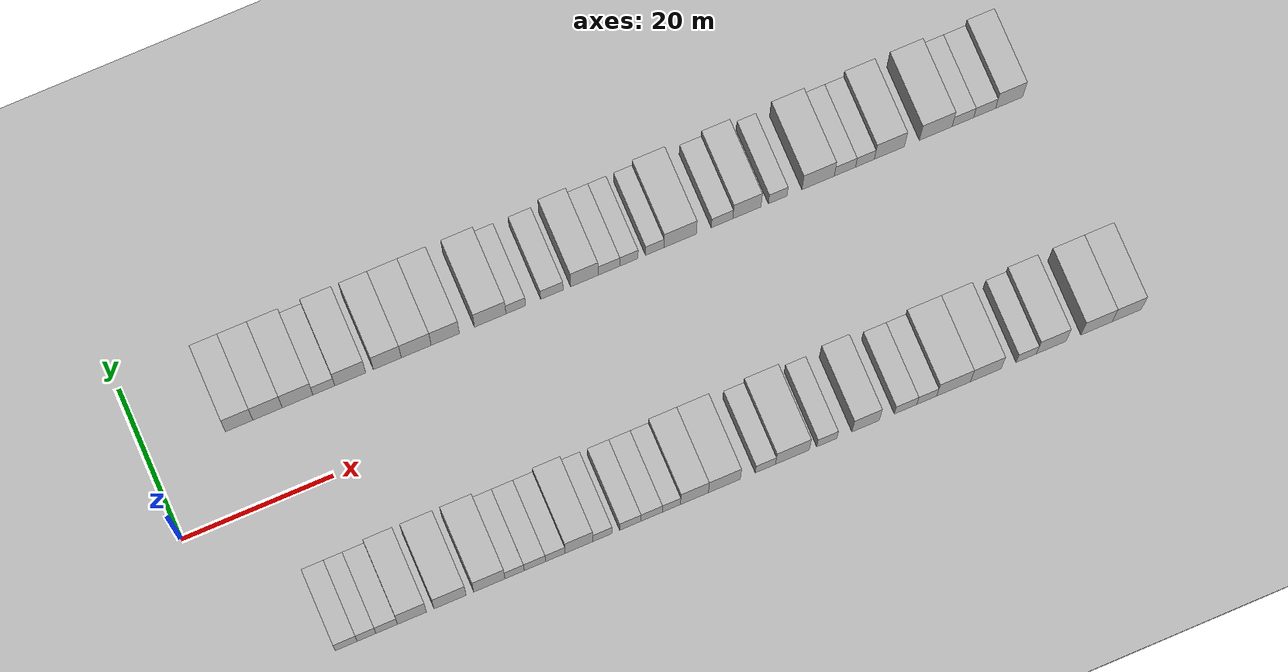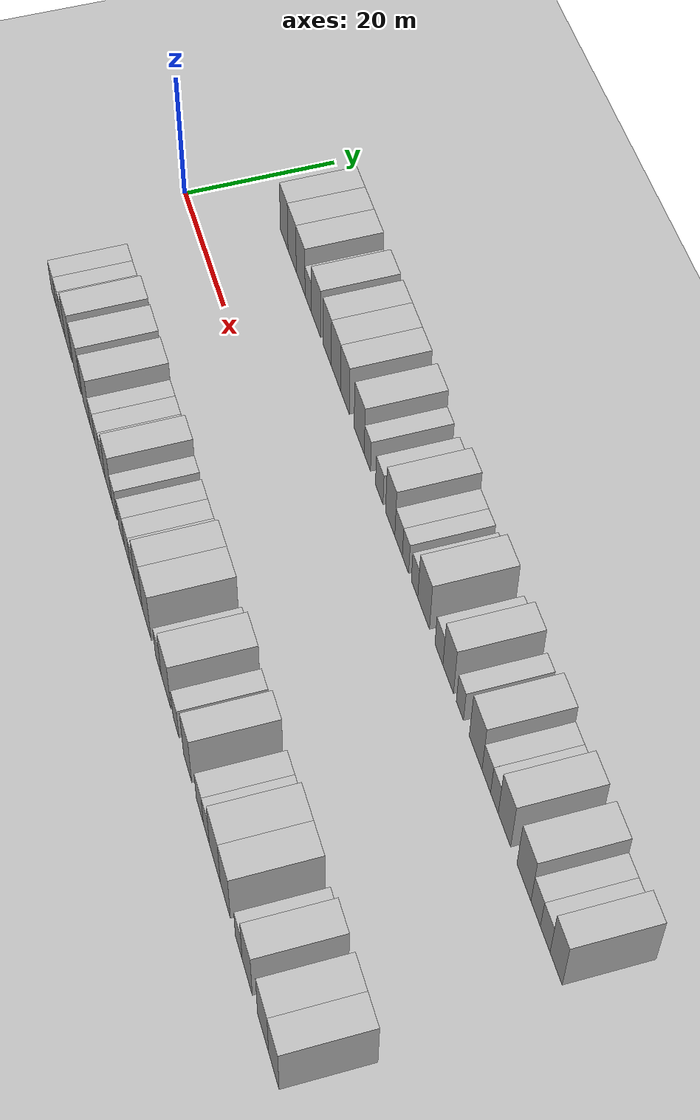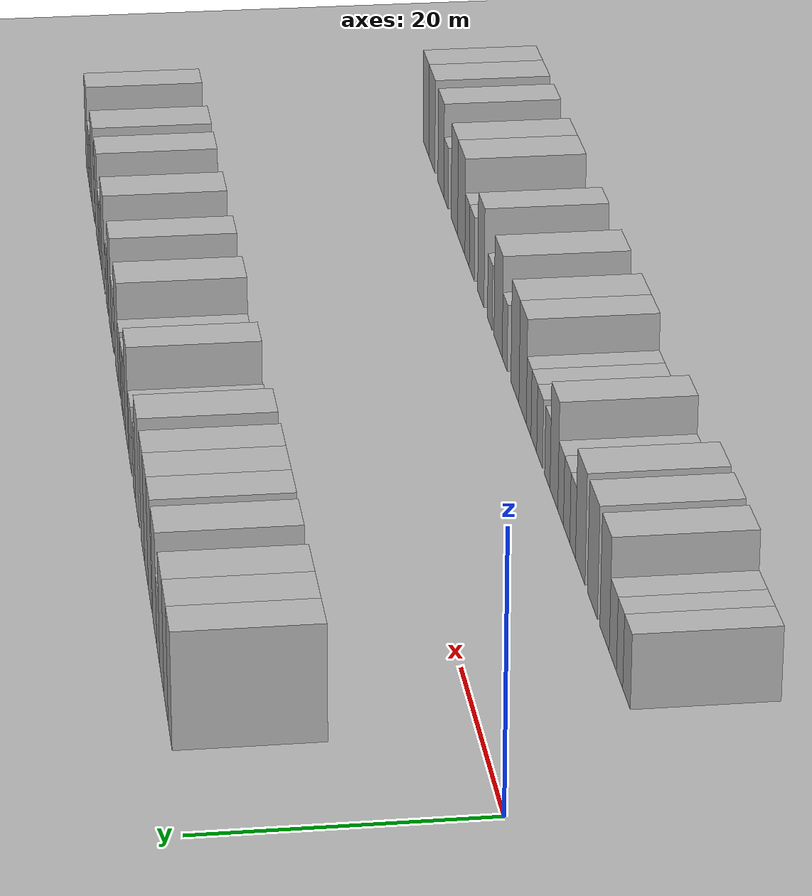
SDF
<sdf version="1.6">
 <world name="default">
  <include><name>ground_plane_1</name><uri>model://HANNAS_ground_plane</uri></include>
  <include>
   <name>ground_plane_2</name>
   <uri>model://HANNAS_ground_plane</uri>
   <pose>100 0 0  0 0 0</pose>
  </include>
  <model name="building_1">
   <static>1</static>
   <pose>11.8060 15.0000 0 0.000000 0.000000 1.570796</pose>
   <link name="link">
    <pose>0 0 4.50 0 0 0</pose>
    <collision name="collision"><geometry><box><size>10.0000 3.6119 9.0000</size></box></geometry></collision>
    <visual name="visual">
     <cast_shadows>0</cast_shadows>
     <geometry><box><size>10.0000 3.6119 9.0000</size></box></geometry>
     <material>
      <script>
       <uri>model://HANNAS_wall/materials/scripts</uri>
       <uri>model://HANNAS_wall/materials/textures</uri>
       <name>vrc/HANNAS_wall</name>
      </script>
     </material>
    </visual>
   </link>
  </model>
  <model name="building_2">
   <static>1</static>
   <pose>15.5486 15.0000 0 0.000000 0.000000 1.570796</pose>
   <link name="link">
    <pose>0 0 4.50 0 0 0</pose>
    <collision name="collision"><geometry><box><size>10.0000 3.8733 9.0000</size></box></geometry></collision>
    <visual name="visual">
     <cast_shadows>0</cast_shadows>
     <geometry><box><size>10.0000 3.8733 9.0000</size></box></geometry>
     <material>
      <script>
       <uri>model://HANNAS_wall/materials/scripts</uri>
       <uri>model://HANNAS_wall/materials/textures</uri>
       <name>vrc/HANNAS_wall</name>
      </script>
     </material>
    </visual>
   </link>
  </model>
  <model name="building_3">
   <static>1</static>
   <pose>19.5123 15.0000 0 0.000000 0.000000 1.570796</pose>
   <link name="link">
    <pose>0 0 4.50 0 0 0</pose>
    <collision name="collision"><geometry><box><size>10.0000 4.0541 9.0000</size></box></geometry></collision>
    <visual name="visual">
     <cast_shadows>0</cast_shadows>
     <geometry><box><size>10.0000 4.0541 9.0000</size></box></geometry>
     <material>
      <script>
       <uri>model://HANNAS_wall/materials/scripts</uri>
       <uri>model://HANNAS_wall/materials/textures</uri>
       <name>vrc/HANNAS_wall</name>
      </script>
     </material>
    </visual>
   </link>
  </model>
  <model name="building_4">
   <static>1</static>
   <pose>22.9831 15.0000 0 0.000000 0.000000 1.570796</pose>
   <link name="link">
    <pose>0 0 3.00 0 0 0</pose>
    <collision name="collision"><geometry><box><size>10.0000 2.8875 6.0000</size></box></geometry></collision>
    <visual name="visual">
     <cast_shadows>0</cast_shadows>
     <geometry><box><size>10.0000 2.8875 6.0000</size></box></geometry>
     <material>
      <script>
       <uri>model://HANNAS_wall/materials/scripts</uri>
       <uri>model://HANNAS_wall/materials/textures</uri>
       <name>vrc/HANNAS_wall</name>
      </script>
     </material>
    </visual>
   </link>
  </model>
  <model name="building_5">
   <static>1</static>
   <pose>26.4760 15.0000 0 0.000000 0.000000 1.570796</pose>
   <link name="link">
    <pose>0 0 4.50 0 0 0</pose>
    <collision name="collision"><geometry><box><size>10.0000 4.0983 9.0000</size></box></geometry></collision>
    <visual name="visual">
     <cast_shadows>0</cast_shadows>
     <geometry><box><size>10.0000 4.0983 9.0000</size></box></geometry>
     <material>
      <script>
       <uri>model://HANNAS_wall/materials/scripts</uri>
       <uri>model://HANNAS_wall/materials/textures</uri>
       <name>vrc/HANNAS_wall</name>
      </script>
     </material>
    </visual>
   </link>
  </model>
  <model name="building_6">
   <static>1</static>
   <pose>31.3769 15.0000 0 0.000000 0.000000 1.570796</pose>
   <link name="link">
    <pose>0 0 4.50 0 0 0</pose>
    <collision name="collision"><geometry><box><size>10.0000 3.7035 9.0000</size></box></geometry></collision>
    <visual name="visual">
     <cast_shadows>0</cast_shadows>
     <geometry><box><size>10.0000 3.7035 9.0000</size></box></geometry>
     <material>
      <script>
       <uri>model://HANNAS_wall/materials/scripts</uri>
       <uri>model://HANNAS_wall/materials/textures</uri>
       <name>vrc/HANNAS_wall</name>
      </script>
     </material>
    </visual>
   </link>
  </model>
  <model name="building_7">
   <static>1</static>
   <pose>35.2094 15.0000 0 0.000000 0.000000 1.570796</pose>
   <link name="link">
    <pose>0 0 4.50 0 0 0</pose>
    <collision name="collision"><geometry><box><size>10.0000 3.9614 9.0000</size></box></geometry></collision>
    <visual name="visual">
     <cast_shadows>0</cast_shadows>
     <geometry><box><size>10.0000 3.9614 9.0000</size></box></geometry>
     <material>
      <script>
       <uri>model://HANNAS_wall/materials/scripts</uri>
       <uri>model://HANNAS_wall/materials/textures</uri>
       <name>vrc/HANNAS_wall</name>
      </script>
     </material>
    </visual>
   </link>
  </model>
  <model name="building_8">
   <static>1</static>
   <pose>39.0596 15.0000 0 0.000000 0.000000 1.570796</pose>
   <link name="link">
    <pose>0 0 4.50 0 0 0</pose>
    <collision name="collision"><geometry><box><size>10.0000 3.7391 9.0000</size></box></geometry></collision>
    <visual name="visual">
     <cast_shadows>0</cast_shadows>
     <geometry><box><size>10.0000 3.7391 9.0000</size></box></geometry>
     <material>
      <script>
       <uri>model://HANNAS_wall/materials/scripts</uri>
       <uri>model://HANNAS_wall/materials/textures</uri>
       <name>vrc/HANNAS_wall</name>
      </script>
     </material>
    </visual>
   </link>
  </model>
  <model name="building_9">
   <static>1</static>
   <pose>45.0208 15.0000 0 0.000000 0.000000 1.570796</pose>
   <link name="link">
    <pose>0 0 4.50 0 0 0</pose>
    <collision name="collision"><geometry><box><size>10.0000 4.1831 9.0000</size></box></geometry></collision>
    <visual name="visual">
     <cast_shadows>0</cast_shadows>
     <geometry><box><size>10.0000 4.1831 9.0000</size></box></geometry>
     <material>
      <script>
       <uri>model://HANNAS_wall/materials/scripts</uri>
       <uri>model://HANNAS_wall/materials/textures</uri>
       <name>vrc/HANNAS_wall</name>
      </script>
     </material>
    </visual>
   </link>
  </model>
  <model name="building_10">
   <static>1</static>
   <pose>48.4158 15.0000 0 0.000000 0.000000 1.570796</pose>
   <link name="link">
    <pose>0 0 3.00 0 0 0</pose>
    <collision name="collision"><geometry><box><size>10.0000 2.6068 6.0000</size></box></geometry></collision>
    <visual name="visual">
     <cast_shadows>0</cast_shadows>
     <geometry><box><size>10.0000 2.6068 6.0000</size></box></geometry>
     <material>
      <script>
       <uri>model://HANNAS_wall/materials/scripts</uri>
       <uri>model://HANNAS_wall/materials/textures</uri>
       <name>vrc/HANNAS_wall</name>
      </script>
     </material>
    </visual>
   </link>
  </model>
  <model name="building_11">
   <static>1</static>
   <pose>53.2167 15.0000 0 0.000000 0.000000 1.570796</pose>
   <link name="link">
    <pose>0 0 3.00 0 0 0</pose>
    <collision name="collision"><geometry><box><size>10.0000 2.9951 6.0000</size></box></geometry></collision>
    <visual name="visual">
     <cast_shadows>0</cast_shadows>
     <geometry><box><size>10.0000 2.9951 6.0000</size></box></geometry>
     <material>
      <script>
       <uri>model://HANNAS_wall/materials/scripts</uri>
       <uri>model://HANNAS_wall/materials/textures</uri>
       <name>vrc/HANNAS_wall</name>
      </script>
     </material>
    </visual>
   </link>
  </model>
  <model name="building_12">
   <static>1</static>
   <pose>57.5387 15.0000 0 0.000000 0.000000 1.570796</pose>
   <link name="link">
    <pose>0 0 4.50 0 0 0</pose>
    <collision name="collision"><geometry><box><size>10.0000 3.6490 9.0000</size></box></geometry></collision>
    <visual name="visual">
     <cast_shadows>0</cast_shadows>
     <geometry><box><size>10.0000 3.6490 9.0000</size></box></geometry>
     <material>
      <script>
       <uri>model://HANNAS_wall/materials/scripts</uri>
       <uri>model://HANNAS_wall/materials/textures</uri>
       <name>vrc/HANNAS_wall</name>
      </script>
     </material>
    </visual>
   </link>
  </model>
  <model name="building_13">
   <static>1</static>
   <pose>60.8177 15.0000 0 0.000000 0.000000 1.570796</pose>
   <link name="link">
    <pose>0 0 3.00 0 0 0</pose>
    <collision name="collision"><geometry><box><size>10.0000 2.9090 6.0000</size></box></geometry></collision>
    <visual name="visual">
     <cast_shadows>0</cast_shadows>
     <geometry><box><size>10.0000 2.9090 6.0000</size></box></geometry>
     <material>
      <script>
       <uri>model://HANNAS_wall/materials/scripts</uri>
       <uri>model://HANNAS_wall/materials/textures</uri>
       <name>vrc/HANNAS_wall</name>
      </script>
     </material>
    </visual>
   </link>
  </model>
  <model name="building_14">
   <static>1</static>
   <pose>63.4770 15.0000 0 0.000000 0.000000 1.570796</pose>
   <link name="link">
    <pose>0 0 3.00 0 0 0</pose>
    <collision name="collision"><geometry><box><size>10.0000 2.4096 6.0000</size></box></geometry></collision>
    <visual name="visual">
     <cast_shadows>0</cast_shadows>
     <geometry><box><size>10.0000 2.4096 6.0000</size></box></geometry>
     <material>
      <script>
       <uri>model://HANNAS_wall/materials/scripts</uri>
       <uri>model://HANNAS_wall/materials/textures</uri>
       <name>vrc/HANNAS_wall</name>
      </script>
     </material>
    </visual>
   </link>
  </model>
  <model name="building_15">
   <static>1</static>
   <pose>66.9053 15.0000 0 0.000000 0.000000 1.570796</pose>
   <link name="link">
    <pose>0 0 3.00 0 0 0</pose>
    <collision name="collision"><geometry><box><size>10.0000 2.4470 6.0000</size></box></geometry></collision>
    <visual name="visual">
     <cast_shadows>0</cast_shadows>
     <geometry><box><size>10.0000 2.4470 6.0000</size></box></geometry>
     <material>
      <script>
       <uri>model://HANNAS_wall/materials/scripts</uri>
       <uri>model://HANNAS_wall/materials/textures</uri>
       <name>vrc/HANNAS_wall</name>
      </script>
     </material>
    </visual>
   </link>
  </model>
  <model name="building_16">
   <static>1</static>
   <pose>70.2902 15.0000 0 0.000000 0.000000 1.570796</pose>
   <link name="link">
    <pose>0 0 4.50 0 0 0</pose>
    <collision name="collision"><geometry><box><size>10.0000 4.3228 9.0000</size></box></geometry></collision>
    <visual name="visual">
     <cast_shadows>0</cast_shadows>
     <geometry><box><size>10.0000 4.3228 9.0000</size></box></geometry>
     <material>
      <script>
       <uri>model://HANNAS_wall/materials/scripts</uri>
       <uri>model://HANNAS_wall/materials/textures</uri>
       <name>vrc/HANNAS_wall</name>
      </script>
     </material>
    </visual>
   </link>
  </model>
  <model name="building_17">
   <static>1</static>
   <pose>75.8866 15.0000 0 0.000000 0.000000 1.570796</pose>
   <link name="link">
    <pose>0 0 3.00 0 0 0</pose>
    <collision name="collision"><geometry><box><size>10.0000 2.8701 6.0000</size></box></geometry></collision>
    <visual name="visual">
     <cast_shadows>0</cast_shadows>
     <geometry><box><size>10.0000 2.8701 6.0000</size></box></geometry>
     <material>
      <script>
       <uri>model://HANNAS_wall/materials/scripts</uri>
       <uri>model://HANNAS_wall/materials/textures</uri>
       <name>vrc/HANNAS_wall</name>
      </script>
     </material>
    </visual>
   </link>
  </model>
  <model name="building_18">
   <static>1</static>
   <pose>79.2001 15.0000 0 0.000000 0.000000 1.570796</pose>
   <link name="link">
    <pose>0 0 4.50 0 0 0</pose>
    <collision name="collision"><geometry><box><size>10.0000 3.7569 9.0000</size></box></geometry></collision>
    <visual name="visual">
     <cast_shadows>0</cast_shadows>
     <geometry><box><size>10.0000 3.7569 9.0000</size></box></geometry>
     <material>
      <script>
       <uri>model://HANNAS_wall/materials/scripts</uri>
       <uri>model://HANNAS_wall/materials/textures</uri>
       <name>vrc/HANNAS_wall</name>
      </script>
     </material>
    </visual>
   </link>
  </model>
  <model name="building_19">
   <static>1</static>
   <pose>83.3253 15.0000 0 0.000000 0.000000 1.570796</pose>
   <link name="link">
    <pose>0 0 3.00 0 0 0</pose>
    <collision name="collision"><geometry><box><size>10.0000 2.4935 6.0000</size></box></geometry></collision>
    <visual name="visual">
     <cast_shadows>0</cast_shadows>
     <geometry><box><size>10.0000 2.4935 6.0000</size></box></geometry>
     <material>
      <script>
       <uri>model://HANNAS_wall/materials/scripts</uri>
       <uri>model://HANNAS_wall/materials/textures</uri>
       <name>vrc/HANNAS_wall</name>
      </script>
     </material>
    </visual>
   </link>
  </model>
  <model name="building_20">
   <static>1</static>
   <pose>88.7367 15.0000 0 0.000000 0.000000 1.570796</pose>
   <link name="link">
    <pose>0 0 4.50 0 0 0</pose>
    <collision name="collision"><geometry><box><size>10.0000 4.3294 9.0000</size></box></geometry></collision>
    <visual name="visual">
     <cast_shadows>0</cast_shadows>
     <geometry><box><size>10.0000 4.3294 9.0000</size></box></geometry>
     <material>
      <script>
       <uri>model://HANNAS_wall/materials/scripts</uri>
       <uri>model://HANNAS_wall/materials/textures</uri>
       <name>vrc/HANNAS_wall</name>
      </script>
     </material>
    </visual>
   </link>
  </model>
  <model name="building_21">
   <static>1</static>
   <pose>92.3291 15.0000 0 0.000000 0.000000 1.570796</pose>
   <link name="link">
    <pose>0 0 3.00 0 0 0</pose>
    <collision name="collision"><geometry><box><size>10.0000 2.8554 6.0000</size></box></geometry></collision>
    <visual name="visual">
     <cast_shadows>0</cast_shadows>
     <geometry><box><size>10.0000 2.8554 6.0000</size></box></geometry>
     <material>
      <script>
       <uri>model://HANNAS_wall/materials/scripts</uri>
       <uri>model://HANNAS_wall/materials/textures</uri>
       <name>vrc/HANNAS_wall</name>
      </script>
     </material>
    </visual>
   </link>
  </model>
  <model name="building_22">
   <static>1</static>
   <pose>95.0133 15.0000 0 0.000000 0.000000 1.570796</pose>
   <link name="link">
    <pose>0 0 3.00 0 0 0</pose>
    <collision name="collision"><geometry><box><size>10.0000 2.5129 6.0000</size></box></geometry></collision>
    <visual name="visual">
     <cast_shadows>0</cast_shadows>
     <geometry><box><size>10.0000 2.5129 6.0000</size></box></geometry>
     <material>
      <script>
       <uri>model://HANNAS_wall/materials/scripts</uri>
       <uri>model://HANNAS_wall/materials/textures</uri>
       <name>vrc/HANNAS_wall</name>
      </script>
     </material>
    </visual>
   </link>
  </model>
  <model name="building_23">
   <static>1</static>
   <pose>98.2925 15.0000 0 0.000000 0.000000 1.570796</pose>
   <link name="link">
    <pose>0 0 4.50 0 0 0</pose>
    <collision name="collision"><geometry><box><size>10.0000 4.0456 9.0000</size></box></geometry></collision>
    <visual name="visual">
     <cast_shadows>0</cast_shadows>
     <geometry><box><size>10.0000 4.0456 9.0000</size></box></geometry>
     <material>
      <script>
       <uri>model://HANNAS_wall/materials/scripts</uri>
       <uri>model://HANNAS_wall/materials/textures</uri>
       <name>vrc/HANNAS_wall</name>
      </script>
     </material>
    </visual>
   </link>
  </model>
  <model name="building_24">
   <static>1</static>
   <pose>104.5154 15.0000 0 0.000000 0.000000 1.570796</pose>
   <link name="link">
    <pose>0 0 4.50 0 0 0</pose>
    <collision name="collision"><geometry><box><size>10.0000 4.4003 9.0000</size></box></geometry></collision>
    <visual name="visual">
     <cast_shadows>0</cast_shadows>
     <geometry><box><size>10.0000 4.4003 9.0000</size></box></geometry>
     <material>
      <script>
       <uri>model://HANNAS_wall/materials/scripts</uri>
       <uri>model://HANNAS_wall/materials/textures</uri>
       <name>vrc/HANNAS_wall</name>
      </script>
     </material>
    </visual>
   </link>
  </model>
  <model name="building_25">
   <static>1</static>
   <pose>108.1630 15.0000 0 0.000000 0.000000 1.570796</pose>
   <link name="link">
    <pose>0 0 3.00 0 0 0</pose>
    <collision name="collision"><geometry><box><size>10.0000 2.8949 6.0000</size></box></geometry></collision>
    <visual name="visual">
     <cast_shadows>0</cast_shadows>
     <geometry><box><size>10.0000 2.8949 6.0000</size></box></geometry>
     <material>
      <script>
       <uri>model://HANNAS_wall/materials/scripts</uri>
       <uri>model://HANNAS_wall/materials/textures</uri>
       <name>vrc/HANNAS_wall</name>
      </script>
     </material>
    </visual>
   </link>
  </model>
  <model name="building_26">
   <static>1</static>
   <pose>111.0786 15.0000 0 0.000000 0.000000 1.570796</pose>
   <link name="link">
    <pose>0 0 3.00 0 0 0</pose>
    <collision name="collision"><geometry><box><size>10.0000 2.9363 6.0000</size></box></geometry></collision>
    <visual name="visual">
     <cast_shadows>0</cast_shadows>
     <geometry><box><size>10.0000 2.9363 6.0000</size></box></geometry>
     <material>
      <script>
       <uri>model://HANNAS_wall/materials/scripts</uri>
       <uri>model://HANNAS_wall/materials/textures</uri>
       <name>vrc/HANNAS_wall</name>
      </script>
     </material>
    </visual>
   </link>
  </model>
  <model name="building_27">
   <static>1</static>
   <pose>114.3755 15.0000 0 0.000000 0.000000 1.570796</pose>
   <link name="link">
    <pose>0 0 4.50 0 0 0</pose>
    <collision name="collision"><geometry><box><size>10.0000 3.6575 9.0000</size></box></geometry></collision>
    <visual name="visual">
     <cast_shadows>0</cast_shadows>
     <geometry><box><size>10.0000 3.6575 9.0000</size></box></geometry>
     <material>
      <script>
       <uri>model://HANNAS_wall/materials/scripts</uri>
       <uri>model://HANNAS_wall/materials/textures</uri>
       <name>vrc/HANNAS_wall</name>
      </script>
     </material>
    </visual>
   </link>
  </model>
  <model name="building_54">
   <static>1</static>
   <pose>13.4438 -15.0000 0 0.000000 0.000000 1.570796</pose>
   <link name="link">
    <pose>0 0 3.00 0 0 0</pose>
    <collision name="collision"><geometry><box><size>10.0000 2.8877 6.0000</size></box></geometry></collision>
    <visual name="visual">
     <cast_shadows>0</cast_shadows>
     <geometry><box><size>10.0000 2.8877 6.0000</size></box></geometry>
     <material>
      <script>
       <uri>model://HANNAS_wall/materials/scripts</uri>
       <uri>model://HANNAS_wall/materials/textures</uri>
       <name>vrc/HANNAS_wall</name>
      </script>
     </material>
    </visual>
   </link>
  </model>
  <model name="building_55">
   <static>1</static>
   <pose>16.1163 -15.0000 0 0.000000 0.000000 1.570796</pose>
   <link name="link">
    <pose>0 0 3.00 0 0 0</pose>
    <collision name="collision"><geometry><box><size>10.0000 2.4572 6.0000</size></box></geometry></collision>
    <visual name="visual">
     <cast_shadows>0</cast_shadows>
     <geometry><box><size>10.0000 2.4572 6.0000</size></box></geometry>
     <material>
      <script>
       <uri>model://HANNAS_wall/materials/scripts</uri>
       <uri>model://HANNAS_wall/materials/textures</uri>
       <name>vrc/HANNAS_wall</name>
      </script>
     </material>
    </visual>
   </link>
  </model>
  <model name="building_56">
   <static>1</static>
   <pose>18.7672 -15.0000 0 0.000000 0.000000 1.570796</pose>
   <link name="link">
    <pose>0 0 3.00 0 0 0</pose>
    <collision name="collision"><geometry><box><size>10.0000 2.8445 6.0000</size></box></geometry></collision>
    <visual name="visual">
     <cast_shadows>0</cast_shadows>
     <geometry><box><size>10.0000 2.8445 6.0000</size></box></geometry>
     <material>
      <script>
       <uri>model://HANNAS_wall/materials/scripts</uri>
       <uri>model://HANNAS_wall/materials/textures</uri>
       <name>vrc/HANNAS_wall</name>
      </script>
     </material>
    </visual>
   </link>
  </model>
  <model name="building_57">
   <static>1</static>
   <pose>22.0871 -15.0000 0 0.000000 0.000000 1.570796</pose>
   <link name="link">
    <pose>0 0 4.50 0 0 0</pose>
    <collision name="collision"><geometry><box><size>10.0000 3.7953 9.0000</size></box></geometry></collision>
    <visual name="visual">
     <cast_shadows>0</cast_shadows>
     <geometry><box><size>10.0000 3.7953 9.0000</size></box></geometry>
     <material>
      <script>
       <uri>model://HANNAS_wall/materials/scripts</uri>
       <uri>model://HANNAS_wall/materials/textures</uri>
       <name>vrc/HANNAS_wall</name>
      </script>
     </material>
    </visual>
   </link>
  </model>
  <model name="building_58">
   <static>1</static>
   <pose>27.0920 -15.0000 0 0.000000 0.000000 1.570796</pose>
   <link name="link">
    <pose>0 0 4.50 0 0 0</pose>
    <collision name="collision"><geometry><box><size>10.0000 4.2145 9.0000</size></box></geometry></collision>
    <visual name="visual">
     <cast_shadows>0</cast_shadows>
     <geometry><box><size>10.0000 4.2145 9.0000</size></box></geometry>
     <material>
      <script>
       <uri>model://HANNAS_wall/materials/scripts</uri>
       <uri>model://HANNAS_wall/materials/textures</uri>
       <name>vrc/HANNAS_wall</name>
      </script>
     </material>
    </visual>
   </link>
  </model>
  <model name="building_59">
   <static>1</static>
   <pose>32.2568 -15.0000 0 0.000000 0.000000 1.570796</pose>
   <link name="link">
    <pose>0 0 4.50 0 0 0</pose>
    <collision name="collision"><geometry><box><size>10.0000 4.1152 9.0000</size></box></geometry></collision>
    <visual name="visual">
     <cast_shadows>0</cast_shadows>
     <geometry><box><size>10.0000 4.1152 9.0000</size></box></geometry>
     <material>
      <script>
       <uri>model://HANNAS_wall/materials/scripts</uri>
       <uri>model://HANNAS_wall/materials/textures</uri>
       <name>vrc/HANNAS_wall</name>
      </script>
     </material>
    </visual>
   </link>
  </model>
  <model name="building_60">
   <static>1</static>
   <pose>35.5849 -15.0000 0 0.000000 0.000000 1.570796</pose>
   <link name="link">
    <pose>0 0 3.00 0 0 0</pose>
    <collision name="collision"><geometry><box><size>10.0000 2.5411 6.0000</size></box></geometry></collision>
    <visual name="visual">
     <cast_shadows>0</cast_shadows>
     <geometry><box><size>10.0000 2.5411 6.0000</size></box></geometry>
     <material>
      <script>
       <uri>model://HANNAS_wall/materials/scripts</uri>
       <uri>model://HANNAS_wall/materials/textures</uri>
       <name>vrc/HANNAS_wall</name>
      </script>
     </material>
    </visual>
   </link>
  </model>
  <model name="building_61">
   <static>1</static>
   <pose>38.2624 -15.0000 0 0.000000 0.000000 1.570796</pose>
   <link name="link">
    <pose>0 0 3.00 0 0 0</pose>
    <collision name="collision"><geometry><box><size>10.0000 2.8138 6.0000</size></box></geometry></collision>
    <visual name="visual">
     <cast_shadows>0</cast_shadows>
     <geometry><box><size>10.0000 2.8138 6.0000</size></box></geometry>
     <material>
      <script>
       <uri>model://HANNAS_wall/materials/scripts</uri>
       <uri>model://HANNAS_wall/materials/textures</uri>
       <name>vrc/HANNAS_wall</name>
      </script>
     </material>
    </visual>
   </link>
  </model>
  <model name="building_62">
   <static>1</static>
   <pose>40.9618 -15.0000 0 0.000000 0.000000 1.570796</pose>
   <link name="link">
    <pose>0 0 3.00 0 0 0</pose>
    <collision name="collision"><geometry><box><size>10.0000 2.5850 6.0000</size></box></geometry></collision>
    <visual name="visual">
     <cast_shadows>0</cast_shadows>
     <geometry><box><size>10.0000 2.5850 6.0000</size></box></geometry>
     <material>
      <script>
       <uri>model://HANNAS_wall/materials/scripts</uri>
       <uri>model://HANNAS_wall/materials/textures</uri>
       <name>vrc/HANNAS_wall</name>
      </script>
     </material>
    </visual>
   </link>
  </model>
  <model name="building_63">
   <static>1</static>
   <pose>44.0783 -15.0000 0 0.000000 0.000000 1.570796</pose>
   <link name="link">
    <pose>0 0 4.50 0 0 0</pose>
    <collision name="collision"><geometry><box><size>10.0000 3.6481 9.0000</size></box></geometry></collision>
    <visual name="visual">
     <cast_shadows>0</cast_shadows>
     <geometry><box><size>10.0000 3.6481 9.0000</size></box></geometry>
     <material>
      <script>
       <uri>model://HANNAS_wall/materials/scripts</uri>
       <uri>model://HANNAS_wall/materials/textures</uri>
       <name>vrc/HANNAS_wall</name>
      </script>
     </material>
    </visual>
   </link>
  </model>
  <model name="building_64">
   <static>1</static>
   <pose>47.1709 -15.0000 0 0.000000 0.000000 1.570796</pose>
   <link name="link">
    <pose>0 0 3.00 0 0 0</pose>
    <collision name="collision"><geometry><box><size>10.0000 2.5371 6.0000</size></box></geometry></collision>
    <visual name="visual">
     <cast_shadows>0</cast_shadows>
     <geometry><box><size>10.0000 2.5371 6.0000</size></box></geometry>
     <material>
      <script>
       <uri>model://HANNAS_wall/materials/scripts</uri>
       <uri>model://HANNAS_wall/materials/textures</uri>
       <name>vrc/HANNAS_wall</name>
      </script>
     </material>
    </visual>
   </link>
  </model>
  <model name="building_65">
   <static>1</static>
   <pose>50.8528 -15.0000 0 0.000000 0.000000 1.570796</pose>
   <link name="link">
    <pose>0 0 3.00 0 0 0</pose>
    <collision name="collision"><geometry><box><size>10.0000 2.8267 6.0000</size></box></geometry></collision>
    <visual name="visual">
     <cast_shadows>0</cast_shadows>
     <geometry><box><size>10.0000 2.8267 6.0000</size></box></geometry>
     <material>
      <script>
       <uri>model://HANNAS_wall/materials/scripts</uri>
       <uri>model://HANNAS_wall/materials/textures</uri>
       <name>vrc/HANNAS_wall</name>
      </script>
     </material>
    </visual>
   </link>
  </model>
  <model name="building_66">
   <static>1</static>
   <pose>53.6703 -15.0000 0 0.000000 0.000000 1.570796</pose>
   <link name="link">
    <pose>0 0 3.00 0 0 0</pose>
    <collision name="collision"><geometry><box><size>10.0000 2.8082 6.0000</size></box></geometry></collision>
    <visual name="visual">
     <cast_shadows>0</cast_shadows>
     <geometry><box><size>10.0000 2.8082 6.0000</size></box></geometry>
     <material>
      <script>
       <uri>model://HANNAS_wall/materials/scripts</uri>
       <uri>model://HANNAS_wall/materials/textures</uri>
       <name>vrc/HANNAS_wall</name>
      </script>
     </material>
    </visual>
   </link>
  </model>
  <model name="building_67">
   <static>1</static>
   <pose>56.2759 -15.0000 0 0.000000 0.000000 1.570796</pose>
   <link name="link">
    <pose>0 0 3.00 0 0 0</pose>
    <collision name="collision"><geometry><box><size>10.0000 2.4032 6.0000</size></box></geometry></collision>
    <visual name="visual">
     <cast_shadows>0</cast_shadows>
     <geometry><box><size>10.0000 2.4032 6.0000</size></box></geometry>
     <material>
      <script>
       <uri>model://HANNAS_wall/materials/scripts</uri>
       <uri>model://HANNAS_wall/materials/textures</uri>
       <name>vrc/HANNAS_wall</name>
      </script>
     </material>
    </visual>
   </link>
  </model>
  <model name="building_68">
   <static>1</static>
   <pose>59.3273 -15.0000 0 0.000000 0.000000 1.570796</pose>
   <link name="link">
    <pose>0 0 4.50 0 0 0</pose>
    <collision name="collision"><geometry><box><size>10.0000 3.6995 9.0000</size></box></geometry></collision>
    <visual name="visual">
     <cast_shadows>0</cast_shadows>
     <geometry><box><size>10.0000 3.6995 9.0000</size></box></geometry>
     <material>
      <script>
       <uri>model://HANNAS_wall/materials/scripts</uri>
       <uri>model://HANNAS_wall/materials/textures</uri>
       <name>vrc/HANNAS_wall</name>
      </script>
     </material>
    </visual>
   </link>
  </model>
  <model name="building_69">
   <static>1</static>
   <pose>63.2808 -15.0000 0 0.000000 0.000000 1.570796</pose>
   <link name="link">
    <pose>0 0 4.50 0 0 0</pose>
    <collision name="collision"><geometry><box><size>10.0000 4.2075 9.0000</size></box></geometry></collision>
    <visual name="visual">
     <cast_shadows>0</cast_shadows>
     <geometry><box><size>10.0000 4.2075 9.0000</size></box></geometry>
     <material>
      <script>
       <uri>model://HANNAS_wall/materials/scripts</uri>
       <uri>model://HANNAS_wall/materials/textures</uri>
       <name>vrc/HANNAS_wall</name>
      </script>
     </material>
    </visual>
   </link>
  </model>
  <model name="building_70">
   <static>1</static>
   <pose>68.7220 -15.0000 0 0.000000 0.000000 1.570796</pose>
   <link name="link">
    <pose>0 0 3.00 0 0 0</pose>
    <collision name="collision"><geometry><box><size>10.0000 2.6748 6.0000</size></box></geometry></collision>
    <visual name="visual">
     <cast_shadows>0</cast_shadows>
     <geometry><box><size>10.0000 2.6748 6.0000</size></box></geometry>
     <material>
      <script>
       <uri>model://HANNAS_wall/materials/scripts</uri>
       <uri>model://HANNAS_wall/materials/textures</uri>
       <name>vrc/HANNAS_wall</name>
      </script>
     </material>
    </visual>
   </link>
  </model>
  <model name="building_71">
   <static>1</static>
   <pose>72.3018 -15.0000 0 0.000000 0.000000 1.570796</pose>
   <link name="link">
    <pose>0 0 4.50 0 0 0</pose>
    <collision name="collision"><geometry><box><size>10.0000 4.4849 9.0000</size></box></geometry></collision>
    <visual name="visual">
     <cast_shadows>0</cast_shadows>
     <geometry><box><size>10.0000 4.4849 9.0000</size></box></geometry>
     <material>
      <script>
       <uri>model://HANNAS_wall/materials/scripts</uri>
       <uri>model://HANNAS_wall/materials/textures</uri>
       <name>vrc/HANNAS_wall</name>
      </script>
     </material>
    </visual>
   </link>
  </model>
  <model name="building_72">
   <static>1</static>
   <pose>76.8808 -15.0000 0 0.000000 0.000000 1.570796</pose>
   <link name="link">
    <pose>0 0 3.00 0 0 0</pose>
    <collision name="collision"><geometry><box><size>10.0000 2.6730 6.0000</size></box></geometry></collision>
    <visual name="visual">
     <cast_shadows>0</cast_shadows>
     <geometry><box><size>10.0000 2.6730 6.0000</size></box></geometry>
     <material>
      <script>
       <uri>model://HANNAS_wall/materials/scripts</uri>
       <uri>model://HANNAS_wall/materials/textures</uri>
       <name>vrc/HANNAS_wall</name>
      </script>
     </material>
    </visual>
   </link>
  </model>
  <model name="building_73">
   <static>1</static>
   <pose>82.0401 -15.0000 0 0.000000 0.000000 1.570796</pose>
   <link name="link">
    <pose>0 0 4.50 0 0 0</pose>
    <collision name="collision"><geometry><box><size>10.0000 3.6457 9.0000</size></box></geometry></collision>
    <visual name="visual">
     <cast_shadows>0</cast_shadows>
     <geometry><box><size>10.0000 3.6457 9.0000</size></box></geometry>
     <material>
      <script>
       <uri>model://HANNAS_wall/materials/scripts</uri>
       <uri>model://HANNAS_wall/materials/textures</uri>
       <name>vrc/HANNAS_wall</name>
      </script>
     </material>
    </visual>
   </link>
  </model>
  <model name="building_74">
   <static>1</static>
   <pose>87.3575 -15.0000 0 0.000000 0.000000 1.570796</pose>
   <link name="link">
    <pose>0 0 3.00 0 0 0</pose>
    <collision name="collision"><geometry><box><size>10.0000 2.9891 6.0000</size></box></geometry></collision>
    <visual name="visual">
     <cast_shadows>0</cast_shadows>
     <geometry><box><size>10.0000 2.9891 6.0000</size></box></geometry>
     <material>
      <script>
       <uri>model://HANNAS_wall/materials/scripts</uri>
       <uri>model://HANNAS_wall/materials/textures</uri>
       <name>vrc/HANNAS_wall</name>
      </script>
     </material>
    </visual>
   </link>
  </model>
  <model name="building_75">
   <static>1</static>
   <pose>90.1687 -15.0000 0 0.000000 0.000000 1.570796</pose>
   <link name="link">
    <pose>0 0 3.00 0 0 0</pose>
    <collision name="collision"><geometry><box><size>10.0000 2.6333 6.0000</size></box></geometry></collision>
    <visual name="visual">
     <cast_shadows>0</cast_shadows>
     <geometry><box><size>10.0000 2.6333 6.0000</size></box></geometry>
     <material>
      <script>
       <uri>model://HANNAS_wall/materials/scripts</uri>
       <uri>model://HANNAS_wall/materials/textures</uri>
       <name>vrc/HANNAS_wall</name>
      </script>
     </material>
    </visual>
   </link>
  </model>
  <model name="building_76">
   <static>1</static>
   <pose>93.7353 -15.0000 0 0.000000 0.000000 1.570796</pose>
   <link name="link">
    <pose>0 0 4.50 0 0 0</pose>
    <collision name="collision"><geometry><box><size>10.0000 4.5000 9.0000</size></box></geometry></collision>
    <visual name="visual">
     <cast_shadows>0</cast_shadows>
     <geometry><box><size>10.0000 4.5000 9.0000</size></box></geometry>
     <material>
      <script>
       <uri>model://HANNAS_wall/materials/scripts</uri>
       <uri>model://HANNAS_wall/materials/textures</uri>
       <name>vrc/HANNAS_wall</name>
      </script>
     </material>
    </visual>
   </link>
  </model>
  <model name="building_77">
   <static>1</static>
   <pose>98.0357 -15.0000 0 0.000000 0.000000 1.570796</pose>
   <link name="link">
    <pose>0 0 4.50 0 0 0</pose>
    <collision name="collision"><geometry><box><size>10.0000 4.1008 9.0000</size></box></geometry></collision>
    <visual name="visual">
     <cast_shadows>0</cast_shadows>
     <geometry><box><size>10.0000 4.1008 9.0000</size></box></geometry>
     <material>
      <script>
       <uri>model://HANNAS_wall/materials/scripts</uri>
       <uri>model://HANNAS_wall/materials/textures</uri>
       <name>vrc/HANNAS_wall</name>
      </script>
     </material>
    </visual>
   </link>
  </model>
  <model name="building_78">
   <static>1</static>
   <pose>103.4363 -15.0000 0 0.000000 0.000000 1.570796</pose>
   <link name="link">
    <pose>0 0 3.00 0 0 0</pose>
    <collision name="collision"><geometry><box><size>10.0000 2.7004 6.0000</size></box></geometry></collision>
    <visual name="visual">
     <cast_shadows>0</cast_shadows>
     <geometry><box><size>10.0000 2.7004 6.0000</size></box></geometry>
     <material>
      <script>
       <uri>model://HANNAS_wall/materials/scripts</uri>
       <uri>model://HANNAS_wall/materials/textures</uri>
       <name>vrc/HANNAS_wall</name>
      </script>
     </material>
    </visual>
   </link>
  </model>
  <model name="building_79">
   <static>1</static>
   <pose>106.7669 -15.0000 0 0.000000 0.000000 1.570796</pose>
   <link name="link">
    <pose>0 0 4.50 0 0 0</pose>
    <collision name="collision"><geometry><box><size>10.0000 3.9607 9.0000</size></box></geometry></collision>
    <visual name="visual">
     <cast_shadows>0</cast_shadows>
     <geometry><box><size>10.0000 3.9607 9.0000</size></box></geometry>
     <material>
      <script>
       <uri>model://HANNAS_wall/materials/scripts</uri>
       <uri>model://HANNAS_wall/materials/textures</uri>
       <name>vrc/HANNAS_wall</name>
      </script>
     </material>
    </visual>
   </link>
  </model>
  <model name="building_80">
   <static>1</static>
   <pose>112.8422 -15.0000 0 0.000000 0.000000 1.570796</pose>
   <link name="link">
    <pose>0 0 4.50 0 0 0</pose>
    <collision name="collision"><geometry><box><size>10.0000 4.1899 9.0000</size></box></geometry></collision>
    <visual name="visual">
     <cast_shadows>0</cast_shadows>
     <geometry><box><size>10.0000 4.1899 9.0000</size></box></geometry>
     <material>
      <script>
       <uri>model://HANNAS_wall/materials/scripts</uri>
       <uri>model://HANNAS_wall/materials/textures</uri>
       <name>vrc/HANNAS_wall</name>
      </script>
     </material>
    </visual>
   </link>
  </model>
  <model name="building_81">
   <static>1</static>
   <pose>116.8840 -15.0000 0 0.000000 0.000000 1.570796</pose>
   <link name="link">
    <pose>0 0 4.50 0 0 0</pose>
    <collision name="collision"><geometry><box><size>10.0000 3.8938 9.0000</size></box></geometry></collision>
    <visual name="visual">
     <cast_shadows>0</cast_shadows>
     <geometry><box><size>10.0000 3.8938 9.0000</size></box></geometry>
     <material>
      <script>
       <uri>model://HANNAS_wall/materials/scripts</uri>
       <uri>model://HANNAS_wall/materials/textures</uri>
       <name>vrc/HANNAS_wall</name>
      </script>
     </material>
    </visual>
   </link>
  </model>
 </world>
</sdf>
